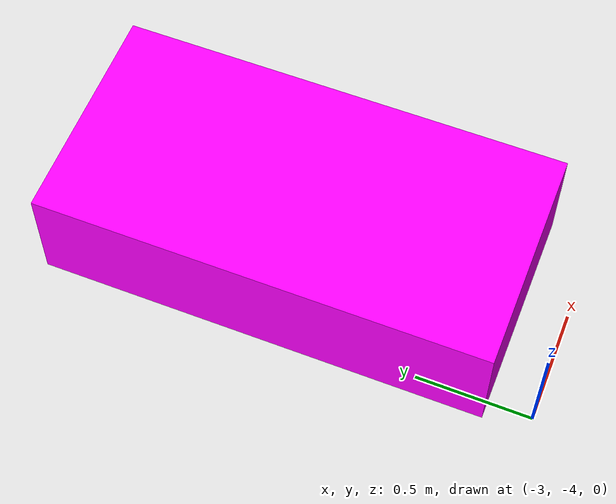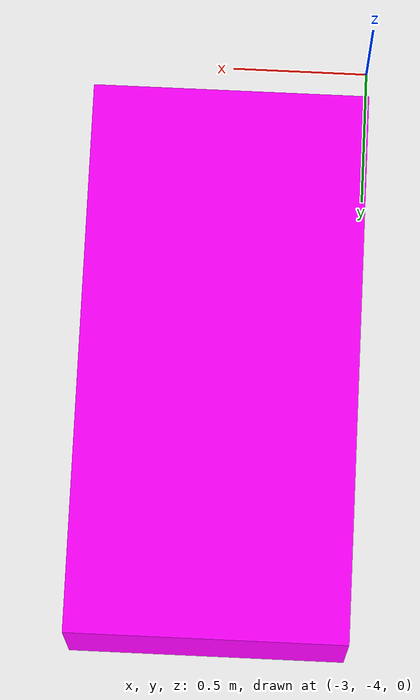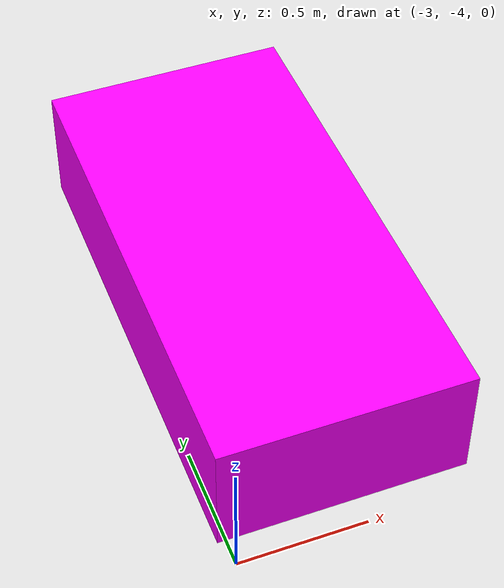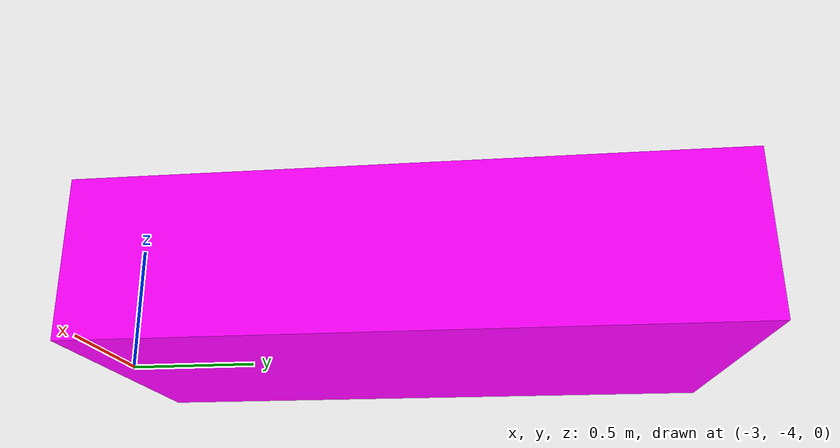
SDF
<?xml version="1.0" ?>
<sdf version="1.8">

<model name="my_robot">

  <pose>-2.5 -2.8 0.1 0 0 -1.5708</pose>

  <!-- ================= CHASSIS ================= -->
  <link name="chassis">
    <inertial>
  <pose>0 0 0 0 0 0</pose>
  <mass>5.0</mass>
  <inertia>
    <ixx>1.56</ixx>
    <ixy>0.0</ixy>
    <ixz>0.0</ixz>
    <iyy>5.31</iyy>
    <iyz>0.0</iyz>
    <izz>5.62</izz>
    </inertia>
</inertial>

    <collision name="collision">
      <geometry>
        <box><size>2.0 1.0 0.5</size></box>
      </geometry>
    </collision>

    <visual name="visual">
      <geometry>
        <box><size>2.0 1.0 0.5</size></box>
      </geometry>
      <material>
        <ambient>1.0 0 1 1</ambient>
        <diffuse>1.0 0 1 1</diffuse>
      </material>
    </visual>
  </link>

  <!-- ================= IMU ================= -->
  <link name="imu_link">
    <pose>0 0 0.1 0 0 0</pose>
    <inertial>
      <mass>0.1</mass>
    </inertial>
  </link>

  <joint name="imu_joint" type="fixed">
    <parent>chassis</parent>
    <child>imu_link</child>
  </joint>

   <!-- ================= LIDAR LINK ================= -->
  <link name="lidar_link">
    <pose>0 0 0.15 0 0 0</pose>
    <inertial>
      <mass>0.1</mass>
      <inertia>
  <ixx>0.1</ixx>
  <ixy>0.0</ixy>
  <ixz>0.0</ixz>
      </inertia>
    </inertial>
    <collision name="lidar_collision">
      <geometry>
        <cylinder><radius>0.05</radius><length>0.05</length></cylinder>
      </geometry>
    </collision>
    <visual name="lidar_visual">
      <geometry>
        <cylinder><radius>0.05</radius><length>0.05</length></cylinder>
      </geometry>
    </visual>
  </link>

  <!-- ================= LIDAR JOINT ================= -->
  <joint name="lidar_joint" type="fixed">
    <parent>chassis</parent>
    <child>lidar_link</child>
    <pose>0 0 0 0 0 0</pose>
  </joint>
  <!-- ================= LEFT WHEEL JOINT ================= -->
  <joint name="left_wheel_joint" type="revolute">
    <parent>chassis</parent>
    <child>left_back_wheel</child>
    <dynamics>
  <damping>0.2</damping>
</dynamics>
    <axis>
      <xyz>0 1 0</xyz>
      <limit><lower>-1.79769e+308</lower><upper>1.79769e+308</upper></limit>
    </axis>
  </joint>

  <!-- ================= RIGHT WHEEL JOINT ================= -->
  <joint name="right_wheel_joint" type="revolute">
    <parent>chassis</parent>
    <child>right_back_wheel</child>
    <dynamics>
  <damping>0.2</damping>
</dynamics>
    <axis>
      <xyz>0 1 0</xyz>
      <limit><lower>-1.79769e+308</lower><upper>1.79769e+308</upper></limit>
    </axis>
  </joint>

  <!-- ================= DRIVE PLUGIN ================= -->
  <plugin filename="gz-sim-diff-drive-system"
          name="gz::sim::systems::DiffDrive">
    <left_wheel_joint>left_wheel_joint</left_wheel_joint>
    <right_wheel_joint>right_wheel_joint</right_wheel_joint>
    <wheel_separation>0.26</wheel_separation>
    <wheel_radius>0.1</wheel_radius>
    <odom_publish_frequency>10</odom_publish_frequency>
    <topic>/cmd_vel</topic>
  </plugin>

</model>
</sdf>
